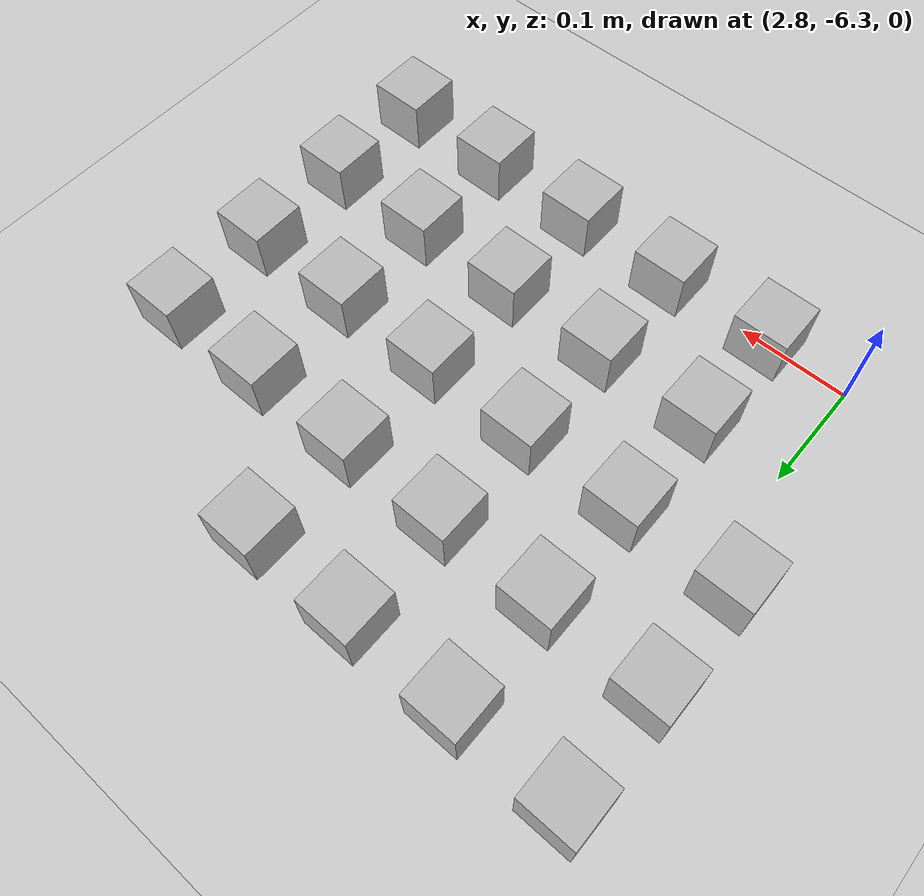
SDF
<sdf version="1.4">
 <world name="default">
  <model name="ground_plane">
   <static>1</static>
   <link name="link">
    <collision name="collision">
     <geometry><plane><normal>0 0 1</normal><size>100 100</size></plane></geometry>
     <surface><friction><ode><mu>100</mu><mu2>50</mu2></ode></friction></surface>
    </collision>
    <visual name="visual">
     <cast_shadows>0</cast_shadows>
     <geometry><plane><normal>0 0 1</normal><size>100 100</size></plane></geometry>
     <material>
      <script><uri>file://media/materials/scripts/gazebo.material</uri><name>Gazebo/Grey</name></script>
     </material>
    </visual>
    <velocity_decay><linear>0</linear><angular>0</angular></velocity_decay>
   </link>
  </model>
  <model name="at195">
   <static>0</static>
   <link name="link">
    <inertial>
     <mass>0.01</mass>
     <inertia><ixx>4e-05</ixx><ixy>0</ixy><ixz>0</ixz><iyy>4e-05</iyy><iyz>0</iyz><izz>4e-05</izz></inertia>
    </inertial>
    <visual name="visual">
     <geometry><box><size>0.05 0.05 0.05</size></box></geometry>
     <material>
      <script>
       <uri>model://at0/materials/scripts</uri>
       <uri>model://at0/materials/textures</uri>
       <name>at0/Diffuse</name>
      </script>
     </material>
    </visual>
    <collision name="collision">
     <geometry><box><size>0.05 0.05 0.05</size></box></geometry>
     <surface><friction><ode><mu>0.8</mu><mu2>0.7</mu2></ode></friction></surface>
    </collision>
    <velocity_decay><linear>0</linear><angular>0</angular></velocity_decay>
   </link>
   <pose>2.87793 -6.29871 0.025 0 -0 0</pose>
  </model>
  <model name="at196">
   <static>0</static>
   <link name="link">
    <inertial>
     <mass>0.01</mass>
     <inertia><ixx>4e-05</ixx><ixy>0</ixy><ixz>0</ixz><iyy>4e-05</iyy><iyz>0</iyz><izz>4e-05</izz></inertia>
    </inertial>
    <visual name="visual">
     <geometry><box><size>0.05 0.05 0.05</size></box></geometry>
     <material>
      <script>
       <uri>model://at0/materials/scripts</uri>
       <uri>model://at0/materials/textures</uri>
       <name>at0/Diffuse</name>
      </script>
     </material>
    </visual>
    <collision name="collision">
     <geometry><box><size>0.05 0.05 0.05</size></box></geometry>
     <surface><friction><ode><mu>0.8</mu><mu2>0.7</mu2></ode></friction></surface>
    </collision>
    <velocity_decay><linear>0</linear><angular>0</angular></velocity_decay>
   </link>
   <pose>2.97793 -6.29871 0.025 0 -0 0</pose>
  </model>
  <model name="at197">
   <static>0</static>
   <link name="link">
    <inertial>
     <mass>0.01</mass>
     <inertia><ixx>4e-05</ixx><ixy>0</ixy><ixz>0</ixz><iyy>4e-05</iyy><iyz>0</iyz><izz>4e-05</izz></inertia>
    </inertial>
    <visual name="visual">
     <geometry><box><size>0.05 0.05 0.05</size></box></geometry>
     <material>
      <script>
       <uri>model://at0/materials/scripts</uri>
       <uri>model://at0/materials/textures</uri>
       <name>at0/Diffuse</name>
      </script>
     </material>
    </visual>
    <collision name="collision">
     <geometry><box><size>0.05 0.05 0.05</size></box></geometry>
     <surface><friction><ode><mu>0.8</mu><mu2>0.7</mu2></ode></friction></surface>
    </collision>
    <velocity_decay><linear>0</linear><angular>0</angular></velocity_decay>
   </link>
   <pose>3.07793 -6.29871 0.025 0 -0 0</pose>
  </model>
  <model name="at198">
   <static>0</static>
   <link name="link">
    <inertial>
     <mass>0.01</mass>
     <inertia><ixx>4e-05</ixx><ixy>0</ixy><ixz>0</ixz><iyy>4e-05</iyy><iyz>0</iyz><izz>4e-05</izz></inertia>
    </inertial>
    <visual name="visual">
     <geometry><box><size>0.05 0.05 0.05</size></box></geometry>
     <material>
      <script>
       <uri>model://at0/materials/scripts</uri>
       <uri>model://at0/materials/textures</uri>
       <name>at0/Diffuse</name>
      </script>
     </material>
    </visual>
    <collision name="collision">
     <geometry><box><size>0.05 0.05 0.05</size></box></geometry>
     <surface><friction><ode><mu>0.8</mu><mu2>0.7</mu2></ode></friction></surface>
    </collision>
    <velocity_decay><linear>0</linear><angular>0</angular></velocity_decay>
   </link>
   <pose>3.17793 -6.29871 0.025 0 -0 0</pose>
  </model>
  <model name="at199">
   <static>0</static>
   <link name="link">
    <inertial>
     <mass>0.01</mass>
     <inertia><ixx>4e-05</ixx><ixy>0</ixy><ixz>0</ixz><iyy>4e-05</iyy><iyz>0</iyz><izz>4e-05</izz></inertia>
    </inertial>
    <visual name="visual">
     <geometry><box><size>0.05 0.05 0.05</size></box></geometry>
     <material>
      <script>
       <uri>model://at0/materials/scripts</uri>
       <uri>model://at0/materials/textures</uri>
       <name>at0/Diffuse</name>
      </script>
     </material>
    </visual>
    <collision name="collision">
     <geometry><box><size>0.05 0.05 0.05</size></box></geometry>
     <surface><friction><ode><mu>0.8</mu><mu2>0.7</mu2></ode></friction></surface>
    </collision>
    <velocity_decay><linear>0</linear><angular>0</angular></velocity_decay>
   </link>
   <pose>3.27793 -6.29871 0.025 0 -0 0</pose>
  </model>
  <model name="at203">
   <static>0</static>
   <link name="link">
    <inertial>
     <mass>0.01</mass>
     <inertia><ixx>4e-05</ixx><ixy>0</ixy><ixz>0</ixz><iyy>4e-05</iyy><iyz>0</iyz><izz>4e-05</izz></inertia>
    </inertial>
    <visual name="visual">
     <geometry><box><size>0.05 0.05 0.05</size></box></geometry>
     <material>
      <script>
       <uri>model://at0/materials/scripts</uri>
       <uri>model://at0/materials/textures</uri>
       <name>at0/Diffuse</name>
      </script>
     </material>
    </visual>
    <collision name="collision">
     <geometry><box><size>0.05 0.05 0.05</size></box></geometry>
     <surface><friction><ode><mu>0.8</mu><mu2>0.7</mu2></ode></friction></surface>
    </collision>
    <velocity_decay><linear>0</linear><angular>0</angular></velocity_decay>
   </link>
   <pose>2.87793 -6.19871 0.025 0 -0 0</pose>
  </model>
  <model name="at204">
   <static>0</static>
   <link name="link">
    <inertial>
     <mass>0.01</mass>
     <inertia><ixx>4e-05</ixx><ixy>0</ixy><ixz>0</ixz><iyy>4e-05</iyy><iyz>0</iyz><izz>4e-05</izz></inertia>
    </inertial>
    <visual name="visual">
     <geometry><box><size>0.05 0.05 0.05</size></box></geometry>
     <material>
      <script>
       <uri>model://at0/materials/scripts</uri>
       <uri>model://at0/materials/textures</uri>
       <name>at0/Diffuse</name>
      </script>
     </material>
    </visual>
    <collision name="collision">
     <geometry><box><size>0.05 0.05 0.05</size></box></geometry>
     <surface><friction><ode><mu>0.8</mu><mu2>0.7</mu2></ode></friction></surface>
    </collision>
    <velocity_decay><linear>0</linear><angular>0</angular></velocity_decay>
   </link>
   <pose>2.97793 -6.19871 0.025 0 -0 0</pose>
  </model>
  <model name="at205">
   <static>0</static>
   <link name="link">
    <inertial>
     <mass>0.01</mass>
     <inertia><ixx>4e-05</ixx><ixy>0</ixy><ixz>0</ixz><iyy>4e-05</iyy><iyz>0</iyz><izz>4e-05</izz></inertia>
    </inertial>
    <visual name="visual">
     <geometry><box><size>0.05 0.05 0.05</size></box></geometry>
     <material>
      <script>
       <uri>model://at0/materials/scripts</uri>
       <uri>model://at0/materials/textures</uri>
       <name>at0/Diffuse</name>
      </script>
     </material>
    </visual>
    <collision name="collision">
     <geometry><box><size>0.05 0.05 0.05</size></box></geometry>
     <surface><friction><ode><mu>0.8</mu><mu2>0.7</mu2></ode></friction></surface>
    </collision>
    <velocity_decay><linear>0</linear><angular>0</angular></velocity_decay>
   </link>
   <pose>3.07793 -6.19871 0.025 0 -0 0</pose>
  </model>
  <model name="at206">
   <static>0</static>
   <link name="link">
    <inertial>
     <mass>0.01</mass>
     <inertia><ixx>4e-05</ixx><ixy>0</ixy><ixz>0</ixz><iyy>4e-05</iyy><iyz>0</iyz><izz>4e-05</izz></inertia>
    </inertial>
    <visual name="visual">
     <geometry><box><size>0.05 0.05 0.05</size></box></geometry>
     <material>
      <script>
       <uri>model://at0/materials/scripts</uri>
       <uri>model://at0/materials/textures</uri>
       <name>at0/Diffuse</name>
      </script>
     </material>
    </visual>
    <collision name="collision">
     <geometry><box><size>0.05 0.05 0.05</size></box></geometry>
     <surface><friction><ode><mu>0.8</mu><mu2>0.7</mu2></ode></friction></surface>
    </collision>
    <velocity_decay><linear>0</linear><angular>0</angular></velocity_decay>
   </link>
   <pose>3.17793 -6.19871 0.025 0 -0 0</pose>
  </model>
  <model name="at207">
   <static>0</static>
   <link name="link">
    <inertial>
     <mass>0.01</mass>
     <inertia><ixx>4e-05</ixx><ixy>0</ixy><ixz>0</ixz><iyy>4e-05</iyy><iyz>0</iyz><izz>4e-05</izz></inertia>
    </inertial>
    <visual name="visual">
     <geometry><box><size>0.05 0.05 0.05</size></box></geometry>
     <material>
      <script>
       <uri>model://at0/materials/scripts</uri>
       <uri>model://at0/materials/textures</uri>
       <name>at0/Diffuse</name>
      </script>
     </material>
    </visual>
    <collision name="collision">
     <geometry><box><size>0.05 0.05 0.05</size></box></geometry>
     <surface><friction><ode><mu>0.8</mu><mu2>0.7</mu2></ode></friction></surface>
    </collision>
    <velocity_decay><linear>0</linear><angular>0</angular></velocity_decay>
   </link>
   <pose>3.27793 -6.19871 0.025 0 -0 0</pose>
  </model>
  <model name="at210">
   <static>0</static>
   <link name="link">
    <inertial>
     <mass>0.01</mass>
     <inertia><ixx>4e-05</ixx><ixy>0</ixy><ixz>0</ixz><iyy>4e-05</iyy><iyz>0</iyz><izz>4e-05</izz></inertia>
    </inertial>
    <visual name="visual">
     <geometry><box><size>0.05 0.05 0.05</size></box></geometry>
     <material>
      <script>
       <uri>model://at0/materials/scripts</uri>
       <uri>model://at0/materials/textures</uri>
       <name>at0/Diffuse</name>
      </script>
     </material>
    </visual>
    <collision name="collision">
     <geometry><box><size>0.05 0.05 0.05</size></box></geometry>
     <surface><friction><ode><mu>0.8</mu><mu2>0.7</mu2></ode></friction></surface>
    </collision>
    <velocity_decay><linear>0</linear><angular>0</angular></velocity_decay>
   </link>
   <pose>2.77793 -6.09871 0.025 0 -0 0</pose>
  </model>
  <model name="at211">
   <static>0</static>
   <link name="link">
    <inertial>
     <mass>0.01</mass>
     <inertia><ixx>4e-05</ixx><ixy>0</ixy><ixz>0</ixz><iyy>4e-05</iyy><iyz>0</iyz><izz>4e-05</izz></inertia>
    </inertial>
    <visual name="visual">
     <geometry><box><size>0.05 0.05 0.05</size></box></geometry>
     <material>
      <script>
       <uri>model://at0/materials/scripts</uri>
       <uri>model://at0/materials/textures</uri>
       <name>at0/Diffuse</name>
      </script>
     </material>
    </visual>
    <collision name="collision">
     <geometry><box><size>0.05 0.05 0.05</size></box></geometry>
     <surface><friction><ode><mu>0.8</mu><mu2>0.7</mu2></ode></friction></surface>
    </collision>
    <velocity_decay><linear>0</linear><angular>0</angular></velocity_decay>
   </link>
   <pose>2.87793 -6.09871 0.025 0 -0 0</pose>
  </model>
  <model name="at212">
   <static>0</static>
   <link name="link">
    <inertial>
     <mass>0.01</mass>
     <inertia><ixx>4e-05</ixx><ixy>0</ixy><ixz>0</ixz><iyy>4e-05</iyy><iyz>0</iyz><izz>4e-05</izz></inertia>
    </inertial>
    <visual name="visual">
     <geometry><box><size>0.05 0.05 0.05</size></box></geometry>
     <material>
      <script>
       <uri>model://at0/materials/scripts</uri>
       <uri>model://at0/materials/textures</uri>
       <name>at0/Diffuse</name>
      </script>
     </material>
    </visual>
    <collision name="collision">
     <geometry><box><size>0.05 0.05 0.05</size></box></geometry>
     <surface><friction><ode><mu>0.8</mu><mu2>0.7</mu2></ode></friction></surface>
    </collision>
    <velocity_decay><linear>0</linear><angular>0</angular></velocity_decay>
   </link>
   <pose>2.97793 -6.09871 0.025 0 -0 0</pose>
  </model>
  <model name="at213">
   <static>0</static>
   <link name="link">
    <inertial>
     <mass>0.01</mass>
     <inertia><ixx>4e-05</ixx><ixy>0</ixy><ixz>0</ixz><iyy>4e-05</iyy><iyz>0</iyz><izz>4e-05</izz></inertia>
    </inertial>
    <visual name="visual">
     <geometry><box><size>0.05 0.05 0.05</size></box></geometry>
     <material>
      <script>
       <uri>model://at0/materials/scripts</uri>
       <uri>model://at0/materials/textures</uri>
       <name>at0/Diffuse</name>
      </script>
     </material>
    </visual>
    <collision name="collision">
     <geometry><box><size>0.05 0.05 0.05</size></box></geometry>
     <surface><friction><ode><mu>0.8</mu><mu2>0.7</mu2></ode></friction></surface>
    </collision>
    <velocity_decay><linear>0</linear><angular>0</angular></velocity_decay>
   </link>
   <pose>3.07793 -6.09871 0.025 0 -0 0</pose>
  </model>
  <model name="at214">
   <static>0</static>
   <link name="link">
    <inertial>
     <mass>0.01</mass>
     <inertia><ixx>4e-05</ixx><ixy>0</ixy><ixz>0</ixz><iyy>4e-05</iyy><iyz>0</iyz><izz>4e-05</izz></inertia>
    </inertial>
    <visual name="visual">
     <geometry><box><size>0.05 0.05 0.05</size></box></geometry>
     <material>
      <script>
       <uri>model://at0/materials/scripts</uri>
       <uri>model://at0/materials/textures</uri>
       <name>at0/Diffuse</name>
      </script>
     </material>
    </visual>
    <collision name="collision">
     <geometry><box><size>0.05 0.05 0.05</size></box></geometry>
     <surface><friction><ode><mu>0.8</mu><mu2>0.7</mu2></ode></friction></surface>
    </collision>
    <velocity_decay><linear>0</linear><angular>0</angular></velocity_decay>
   </link>
   <pose>3.17793 -6.09871 0.025 0 -0 0</pose>
  </model>
  <model name="at215">
   <static>0</static>
   <link name="link">
    <inertial>
     <mass>0.01</mass>
     <inertia><ixx>4e-05</ixx><ixy>0</ixy><ixz>0</ixz><iyy>4e-05</iyy><iyz>0</iyz><izz>4e-05</izz></inertia>
    </inertial>
    <visual name="visual">
     <geometry><box><size>0.05 0.05 0.05</size></box></geometry>
     <material>
      <script>
       <uri>model://at0/materials/scripts</uri>
       <uri>model://at0/materials/textures</uri>
       <name>at0/Diffuse</name>
      </script>
     </material>
    </visual>
    <collision name="collision">
     <geometry><box><size>0.05 0.05 0.05</size></box></geometry>
     <surface><friction><ode><mu>0.8</mu><mu2>0.7</mu2></ode></friction></surface>
    </collision>
    <velocity_decay><linear>0</linear><angular>0</angular></velocity_decay>
   </link>
   <pose>3.27793 -6.09871 0.025 0 -0 0</pose>
  </model>
  <model name="at218">
   <static>0</static>
   <link name="link">
    <inertial>
     <mass>0.01</mass>
     <inertia><ixx>4e-05</ixx><ixy>0</ixy><ixz>0</ixz><iyy>4e-05</iyy><iyz>0</iyz><izz>4e-05</izz></inertia>
    </inertial>
    <visual name="visual">
     <geometry><box><size>0.05 0.05 0.05</size></box></geometry>
     <material>
      <script>
       <uri>model://at0/materials/scripts</uri>
       <uri>model://at0/materials/textures</uri>
       <name>at0/Diffuse</name>
      </script>
     </material>
    </visual>
    <collision name="collision">
     <geometry><box><size>0.05 0.05 0.05</size></box></geometry>
     <surface><friction><ode><mu>0.8</mu><mu2>0.7</mu2></ode></friction></surface>
    </collision>
    <velocity_decay><linear>0</linear><angular>0</angular></velocity_decay>
   </link>
   <pose>2.77793 -5.99871 0.025 0 -0 0</pose>
  </model>
  <model name="at219">
   <static>0</static>
   <link name="link">
    <inertial>
     <mass>0.01</mass>
     <inertia><ixx>4e-05</ixx><ixy>0</ixy><ixz>0</ixz><iyy>4e-05</iyy><iyz>0</iyz><izz>4e-05</izz></inertia>
    </inertial>
    <visual name="visual">
     <geometry><box><size>0.05 0.05 0.05</size></box></geometry>
     <material>
      <script>
       <uri>model://at0/materials/scripts</uri>
       <uri>model://at0/materials/textures</uri>
       <name>at0/Diffuse</name>
      </script>
     </material>
    </visual>
    <collision name="collision">
     <geometry><box><size>0.05 0.05 0.05</size></box></geometry>
     <surface><friction><ode><mu>0.8</mu><mu2>0.7</mu2></ode></friction></surface>
    </collision>
    <velocity_decay><linear>0</linear><angular>0</angular></velocity_decay>
   </link>
   <pose>2.87793 -5.99871 0.025 0 -0 0</pose>
  </model>
  <model name="at220">
   <static>0</static>
   <link name="link">
    <inertial>
     <mass>0.01</mass>
     <inertia><ixx>4e-05</ixx><ixy>0</ixy><ixz>0</ixz><iyy>4e-05</iyy><iyz>0</iyz><izz>4e-05</izz></inertia>
    </inertial>
    <visual name="visual">
     <geometry><box><size>0.05 0.05 0.05</size></box></geometry>
     <material>
      <script>
       <uri>model://at0/materials/scripts</uri>
       <uri>model://at0/materials/textures</uri>
       <name>at0/Diffuse</name>
      </script>
     </material>
    </visual>
    <collision name="collision">
     <geometry><box><size>0.05 0.05 0.05</size></box></geometry>
     <surface><friction><ode><mu>0.8</mu><mu2>0.7</mu2></ode></friction></surface>
    </collision>
    <velocity_decay><linear>0</linear><angular>0</angular></velocity_decay>
   </link>
   <pose>2.97793 -5.99871 0.025 0 -0 0</pose>
  </model>
  <model name="at221">
   <static>0</static>
   <link name="link">
    <inertial>
     <mass>0.01</mass>
     <inertia><ixx>4e-05</ixx><ixy>0</ixy><ixz>0</ixz><iyy>4e-05</iyy><iyz>0</iyz><izz>4e-05</izz></inertia>
    </inertial>
    <visual name="visual">
     <geometry><box><size>0.05 0.05 0.05</size></box></geometry>
     <material>
      <script>
       <uri>model://at0/materials/scripts</uri>
       <uri>model://at0/materials/textures</uri>
       <name>at0/Diffuse</name>
      </script>
     </material>
    </visual>
    <collision name="collision">
     <geometry><box><size>0.05 0.05 0.05</size></box></geometry>
     <surface><friction><ode><mu>0.8</mu><mu2>0.7</mu2></ode></friction></surface>
    </collision>
    <velocity_decay><linear>0</linear><angular>0</angular></velocity_decay>
   </link>
   <pose>3.07793 -5.99871 0.025 0 -0 0</pose>
  </model>
  <model name="at222">
   <static>0</static>
   <link name="link">
    <inertial>
     <mass>0.01</mass>
     <inertia><ixx>4e-05</ixx><ixy>0</ixy><ixz>0</ixz><iyy>4e-05</iyy><iyz>0</iyz><izz>4e-05</izz></inertia>
    </inertial>
    <visual name="visual">
     <geometry><box><size>0.05 0.05 0.05</size></box></geometry>
     <material>
      <script>
       <uri>model://at0/materials/scripts</uri>
       <uri>model://at0/materials/textures</uri>
       <name>at0/Diffuse</name>
      </script>
     </material>
    </visual>
    <collision name="collision">
     <geometry><box><size>0.05 0.05 0.05</size></box></geometry>
     <surface><friction><ode><mu>0.8</mu><mu2>0.7</mu2></ode></friction></surface>
    </collision>
    <velocity_decay><linear>0</linear><angular>0</angular></velocity_decay>
   </link>
   <pose>3.17793 -5.99871 0.025 0 -0 0</pose>
  </model>
  <model name="at223">
   <static>0</static>
   <link name="link">
    <inertial>
     <mass>0.01</mass>
     <inertia><ixx>4e-05</ixx><ixy>0</ixy><ixz>0</ixz><iyy>4e-05</iyy><iyz>0</iyz><izz>4e-05</izz></inertia>
    </inertial>
    <visual name="visual">
     <geometry><box><size>0.05 0.05 0.05</size></box></geometry>
     <material>
      <script>
       <uri>model://at0/materials/scripts</uri>
       <uri>model://at0/materials/textures</uri>
       <name>at0/Diffuse</name>
      </script>
     </material>
    </visual>
    <collision name="collision">
     <geometry><box><size>0.05 0.05 0.05</size></box></geometry>
     <surface><friction><ode><mu>0.8</mu><mu2>0.7</mu2></ode></friction></surface>
    </collision>
    <velocity_decay><linear>0</linear><angular>0</angular></velocity_decay>
   </link>
   <pose>3.27793 -5.99871 0.025 0 -0 0</pose>
  </model>
  <model name="at226">
   <static>0</static>
   <link name="link">
    <inertial>
     <mass>0.01</mass>
     <inertia><ixx>4e-05</ixx><ixy>0</ixy><ixz>0</ixz><iyy>4e-05</iyy><iyz>0</iyz><izz>4e-05</izz></inertia>
    </inertial>
    <visual name="visual">
     <geometry><box><size>0.05 0.05 0.05</size></box></geometry>
     <material>
      <script>
       <uri>model://at0/materials/scripts</uri>
       <uri>model://at0/materials/textures</uri>
       <name>at0/Diffuse</name>
      </script>
     </material>
    </visual>
    <collision name="collision">
     <geometry><box><size>0.05 0.05 0.05</size></box></geometry>
     <surface><friction><ode><mu>0.8</mu><mu2>0.7</mu2></ode></friction></surface>
    </collision>
    <velocity_decay><linear>0</linear><angular>0</angular></velocity_decay>
   </link>
   <pose>2.77793 -5.89871 0.025 0 -0 0</pose>
  </model>
  <model name="at227">
   <static>0</static>
   <link name="link">
    <inertial>
     <mass>0.01</mass>
     <inertia><ixx>4e-05</ixx><ixy>0</ixy><ixz>0</ixz><iyy>4e-05</iyy><iyz>0</iyz><izz>4e-05</izz></inertia>
    </inertial>
    <visual name="visual">
     <geometry><box><size>0.05 0.05 0.05</size></box></geometry>
     <material>
      <script>
       <uri>model://at0/materials/scripts</uri>
       <uri>model://at0/materials/textures</uri>
       <name>at0/Diffuse</name>
      </script>
     </material>
    </visual>
    <collision name="collision">
     <geometry><box><size>0.05 0.05 0.05</size></box></geometry>
     <surface><friction><ode><mu>0.8</mu><mu2>0.7</mu2></ode></friction></surface>
    </collision>
    <velocity_decay><linear>0</linear><angular>0</angular></velocity_decay>
   </link>
   <pose>2.87793 -5.89871 0.025 0 -0 0</pose>
  </model>
  <model name="at228">
   <static>0</static>
   <link name="link">
    <inertial>
     <mass>0.01</mass>
     <inertia><ixx>4e-05</ixx><ixy>0</ixy><ixz>0</ixz><iyy>4e-05</iyy><iyz>0</iyz><izz>4e-05</izz></inertia>
    </inertial>
    <visual name="visual">
     <geometry><box><size>0.05 0.05 0.05</size></box></geometry>
     <material>
      <script>
       <uri>model://at0/materials/scripts</uri>
       <uri>model://at0/materials/textures</uri>
       <name>at0/Diffuse</name>
      </script>
     </material>
    </visual>
    <collision name="collision">
     <geometry><box><size>0.05 0.05 0.05</size></box></geometry>
     <surface><friction><ode><mu>0.8</mu><mu2>0.7</mu2></ode></friction></surface>
    </collision>
    <velocity_decay><linear>0</linear><angular>0</angular></velocity_decay>
   </link>
   <pose>2.97793 -5.89871 0.025 0 -0 0</pose>
  </model>
  <model name="at229">
   <static>0</static>
   <link name="link">
    <inertial>
     <mass>0.01</mass>
     <inertia><ixx>4e-05</ixx><ixy>0</ixy><ixz>0</ixz><iyy>4e-05</iyy><iyz>0</iyz><izz>4e-05</izz></inertia>
    </inertial>
    <visual name="visual">
     <geometry><box><size>0.05 0.05 0.05</size></box></geometry>
     <material>
      <script>
       <uri>model://at0/materials/scripts</uri>
       <uri>model://at0/materials/textures</uri>
       <name>at0/Diffuse</name>
      </script>
     </material>
    </visual>
    <collision name="collision">
     <geometry><box><size>0.05 0.05 0.05</size></box></geometry>
     <surface><friction><ode><mu>0.8</mu><mu2>0.7</mu2></ode></friction></surface>
    </collision>
    <velocity_decay><linear>0</linear><angular>0</angular></velocity_decay>
   </link>
   <pose>3.07793 -5.89871 0.025 0 -0 0</pose>
  </model>
 </world>
</sdf>
